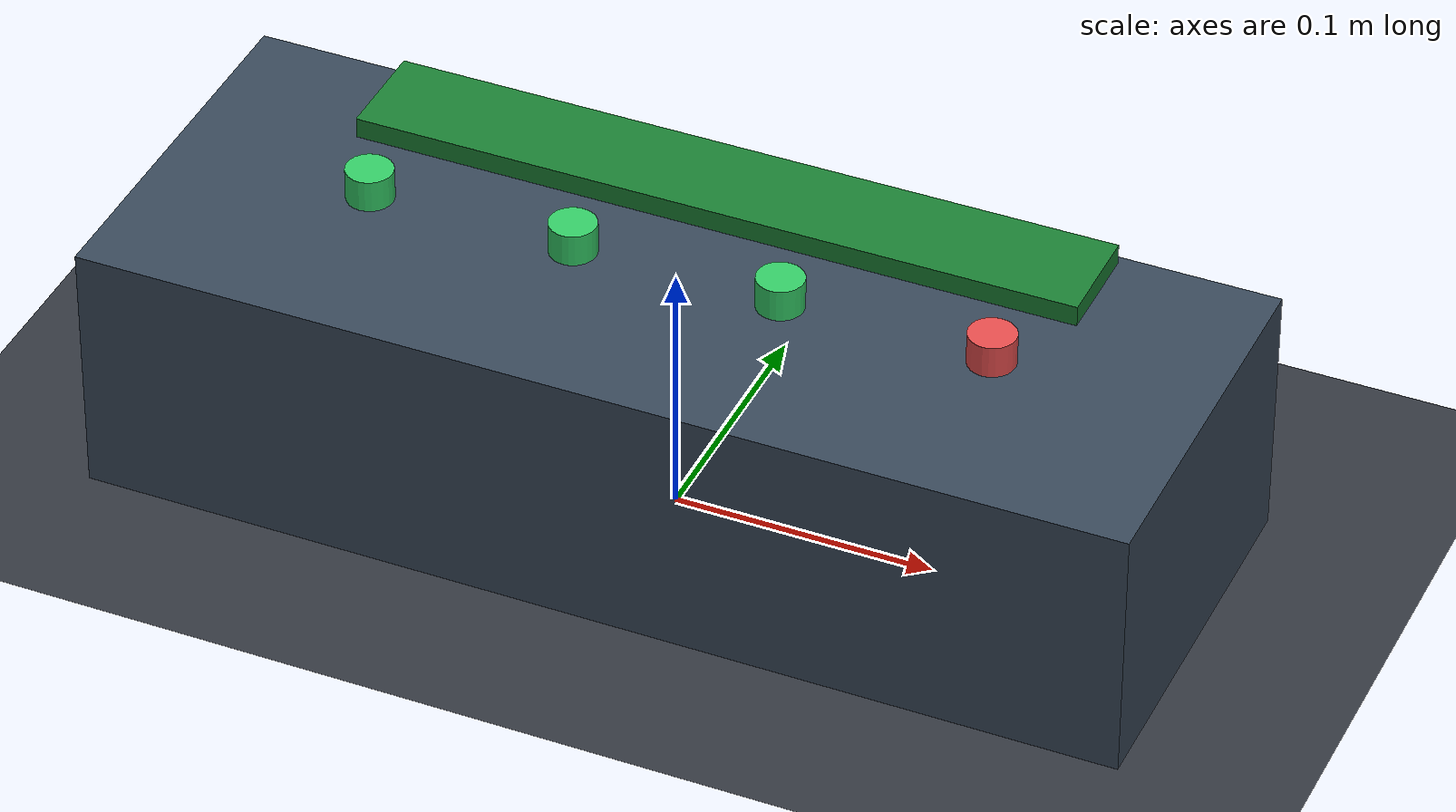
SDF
<?xml version="1.0" ?>
<sdf version="1.8">
  <world name="ev_battery_thermal_world">
    <physics name="1ms" type="ignored">
      <max_step_size>0.001</max_step_size>
      <real_time_factor>1.0</real_time_factor>
    </physics>

    <!-- Sun light -->
    <light type="directional" name="sun">
      <cast_shadows>true</cast_shadows>
      <pose>0 0 10 0 0 0</pose>
      <diffuse>0.8 0.8 0.8 1</diffuse>
      <specular>0.2 0.2 0.2 1</specular>
      <attenuation>
        <range>1000</range>
        <constant>0.9</constant>
        <linear>0.01</linear>
        <quadratic>0.001</quadratic>
      </attenuation>
      <direction>-0.5 0.1 -0.9</direction>
    </light>

    <!-- Ground plane -->
    <model name="ground_plane">
      <static>true</static>
      <link name="link">
        <collision name="collision">
          <geometry>
            <plane>
              <normal>0 0 1</normal>
              <size>100 100</size>
            </plane>
          </geometry>
        </collision>
        <visual name="visual">
          <geometry>
            <plane>
              <normal>0 0 1</normal>
              <size>100 100</size>
            </plane>
          </geometry>
          <material>
            <ambient>0.1 0.12 0.15 1</ambient>
            <diffuse>0.2 0.22 0.25 1</diffuse>
          </material>
        </visual>
      </link>
    </model>

    <!-- Include Battery Pack Model -->
    <include>
      <uri>model://ev_battery_pack</uri>
      <name>battery_under_test</name>
      <pose>0 0 0 0 0 0</pose>
    </include>
  </world>
</sdf>

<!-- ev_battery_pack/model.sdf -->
<sdf version="1.8">
  <model name="ev_battery_pack">
    <static>false</static>

    <!-- Main Module Enclosure & Thermal Baseplate -->
    <link name="chassis">
      <pose>0 0 0.05 0 0 0</pose>
      <inertial>
        <mass>8.50</mass>
        <inertia>
          <ixx>0.085</ixx>
          <iyy>0.240</iyy>
          <izz>0.310</izz>
        </inertia>
      </inertial>
      <collision name="chassis_collision">
        <geometry>
          <box>
            <size>0.40 0.15 0.10</size>
          </box>
        </geometry>
      </collision>
      <visual name="chassis_visual">
        <geometry>
          <box>
            <size>0.40 0.15 0.10</size>
          </box>
        </geometry>
        <material>
          <ambient>0.12 0.15 0.20 1.0</ambient>
          <diffuse>0.22 0.28 0.35 1.0</diffuse>
          <specular>0.7 0.7 0.7 1.0</specular>
        </material>
      </visual>

      <!-- Aluminum Cooling Fin Base -->
      <visual name="heatsink_fins">
        <pose>0 0 -0.055 0 0 0</pose>
        <geometry>
          <box>
            <size>0.38 0.14 0.015</size>
          </box>
        </geometry>
        <material>
          <ambient>0.3 0.3 0.35 1.0</ambient>
          <diffuse>0.5 0.5 0.55 1.0</diffuse>
        </material>
      </visual>
    </link>

    <!-- Cell 1 (18650 Cylindrical Link) -->
    <link name="cell_1">
      <pose>-0.12 0 0.08 0 0 0</pose>
      <inertial>
        <mass>0.048</mass>
        <inertia>
          <ixx>0.000025</ixx>
          <iyy>0.000025</iyy>
          <izz>0.000005</izz>
        </inertia>
      </inertial>
      <collision name="cell_1_col">
        <geometry>
          <cylinder>
            <radius>0.009</radius>
            <length>0.065</length>
          </cylinder>
        </geometry>
      </collision>
      <visual name="cell_1_vis">
        <geometry>
          <cylinder>
            <radius>0.009</radius>
            <length>0.065</length>
          </cylinder>
        </geometry>
        <material>
          <ambient>0.1 0.6 0.3 1.0</ambient>
          <diffuse>0.2 0.8 0.4 1.0</diffuse>
          <specular>0.8 0.8 0.8 1.0</specular>
        </material>
      </visual>
    </link>

    <!-- Cell 2 (18650 Cylindrical Link) -->
    <link name="cell_2">
      <pose>-0.04 0 0.08 0 0 0</pose>
      <inertial>
        <mass>0.048</mass>
        <inertia>
          <ixx>0.000025</ixx>
          <iyy>0.000025</iyy>
          <izz>0.000005</izz>
        </inertia>
      </inertial>
      <collision name="cell_2_col">
        <geometry>
          <cylinder>
            <radius>0.009</radius>
            <length>0.065</length>
          </cylinder>
        </geometry>
      </collision>
      <visual name="cell_2_vis">
        <geometry>
          <cylinder>
            <radius>0.009</radius>
            <length>0.065</length>
          </cylinder>
        </geometry>
        <material>
          <ambient>0.1 0.6 0.3 1.0</ambient>
          <diffuse>0.2 0.8 0.4 1.0</diffuse>
          <specular>0.8 0.8 0.8 1.0</specular>
        </material>
      </visual>
    </link>

    <!-- Cell 3 (18650 Cylindrical Link) -->
    <link name="cell_3">
      <pose>0.04 0 0.08 0 0 0</pose>
      <inertial>
        <mass>0.048</mass>
        <inertia>
          <ixx>0.000025</ixx>
          <iyy>0.000025</iyy>
          <izz>0.000005</izz>
        </inertia>
      </inertial>
      <collision name="cell_3_col">
        <geometry>
          <cylinder>
            <radius>0.009</radius>
            <length>0.065</length>
          </cylinder>
        </geometry>
      </collision>
      <visual name="cell_3_vis">
        <geometry>
          <cylinder>
            <radius>0.009</radius>
            <length>0.065</length>
          </cylinder>
        </geometry>
        <material>
          <ambient>0.1 0.6 0.3 1.0</ambient>
          <diffuse>0.2 0.8 0.4 1.0</diffuse>
          <specular>0.8 0.8 0.8 1.0</specular>
        </material>
      </visual>
    </link>

    <!-- Cell 4 (18650 Cylindrical Link) -->
    <link name="cell_4">
      <pose>0.12 0 0.08 0 0 0</pose>
      <inertial>
        <mass>0.048</mass>
        <inertia>
          <ixx>0.000025</ixx>
          <iyy>0.000025</iyy>
          <izz>0.000005</izz>
        </inertia>
      </inertial>
      <collision name="cell_4_col">
        <geometry>
          <cylinder>
            <radius>0.009</radius>
            <length>0.065</length>
          </cylinder>
        </geometry>
      </collision>
      <visual name="cell_4_vis">
        <geometry>
          <cylinder>
            <radius>0.009</radius>
            <length>0.065</length>
          </cylinder>
        </geometry>
        <material>
          <ambient>0.7 0.2 0.2 1.0</ambient>
          <diffuse>0.9 0.3 0.3 1.0</diffuse>
          <specular>0.8 0.8 0.8 1.0</specular>
        </material>
      </visual>
    </link>

    <!-- Active Rebalancer Module Link -->
    <link name="rebalancer_power_stage">
      <pose>0 0.05 0.105 0 0 0</pose>
      <visual name="pcb_vis">
        <geometry>
          <box>
            <size>0.28 0.04 0.008</size>
          </box>
        </geometry>
        <material>
          <ambient>0.05 0.3 0.1 1.0</ambient>
          <diffuse>0.1 0.5 0.2 1.0</diffuse>
        </material>
      </visual>
    </link>

    <!-- Joints attaching cells to chassis -->
    <joint name="chassis_to_cell1" type="fixed">
      <parent>chassis</parent>
      <child>cell_1</child>
    </joint>
    <joint name="chassis_to_cell2" type="fixed">
      <parent>chassis</parent>
      <child>cell_2</child>
    </joint>
    <joint name="chassis_to_cell3" type="fixed">
      <parent>chassis</parent>
      <child>cell_3</child>
    </joint>
    <joint name="chassis_to_cell4" type="fixed">
      <parent>chassis</parent>
      <child>cell_4</child>
    </joint>
    <joint name="chassis_to_rebalancer" type="fixed">
      <parent>chassis</parent>
      <child>rebalancer_power_stage</child>
    </joint>

    <!-- Multi-Spectral Thermal Camera Sensor -->
    <sensor name="pack_thermal_imager" type="camera">
      <pose>0 0 0.35 0 1.5708 0</pose>
      <always_on>1</always_on>
      <update_rate>10</update_rate>
      <camera>
        <horizontal_fov>1.15</horizontal_fov>
        <image>
          <width>640</width>
          <height>480</height>
          <format>R8G8B8</format>
        </image>
        <clip>
          <near>0.02</near>
          <far>3.0</far>
        </clip>
      </camera>
    </sensor>

    <!-- Ultrasonic PZT Transceiver Array on Cell Surfaces -->
    <sensor name="pzt_ultrasonic_array" type="ray">
      <pose>0 0 0.08 0 0 0</pose>
      <always_on>1</always_on>
      <update_rate>100</update_rate>
      <ray>
        <scan>
          <horizontal>
            <samples>4</samples>
            <resolution>1</resolution>
            <min_angle>-0.1</min_angle>
            <max_angle>0.1</max_angle>
          </horizontal>
        </scan>
        <range>
          <min>0.005</min>
          <max>0.020</max>
          <resolution>0.00001</resolution>
        </range>
      </ray>
    </sensor>

    <!-- Multi-Physics 3D Battery Thermal & Stress Conduction Plugin -->
    <plugin name="gazebo_battery_thermal_plugin" filename="libgazebo_battery_thermal_plugin.so">
      <update_rate>100.0</update_rate>
      <nominal_capacity_ah>2.6</nominal_capacity_ah>
      <casing_thermal_conductivity>205.0</casing_thermal_conductivity>
      <radial_thermal_conductivity>1.20</radial_thermal_conductivity>
      <axial_thermal_conductivity>28.0</axial_thermal_conductivity>
      <specific_heat_capacity>950.0</specific_heat_capacity>
      <ambient_temperature_c>25.0</ambient_temperature_c>
      <ultrasonic_frequency_mhz>1.0</ultrasonic_frequency_mhz>
      <tof_baseline_us>8.0</tof_baseline_us>
    </plugin>

    <!-- Synchronous ZVS Active Rebalancer Actuator Plugin -->
    <plugin name="gazebo_zvs_rebalancing_plugin" filename="libgazebo_zvs_rebalancing_plugin.so">
      <switching_frequency_hz>100000</switching_frequency_hz>
      <max_transfer_current_a>2.50</max_transfer_current_a>
      <soft_switching_efficiency>0.9802</soft_switching_efficiency>
      <dead_time_ns>25</dead_time_ns>
    </plugin>
  </model>
</sdf>
